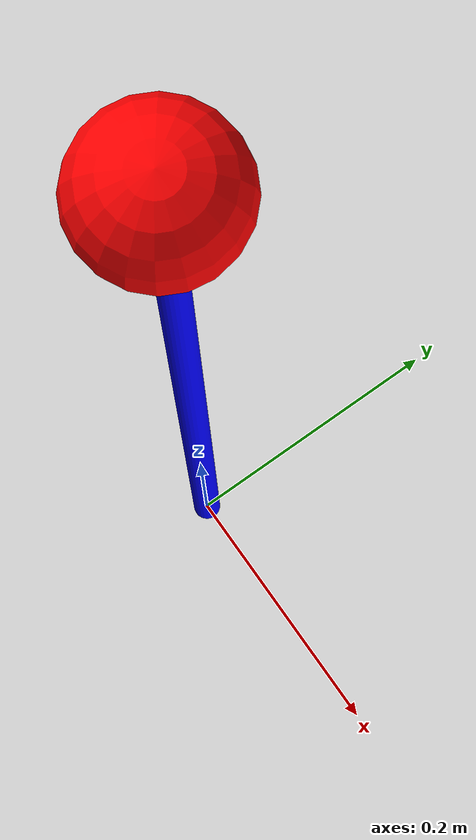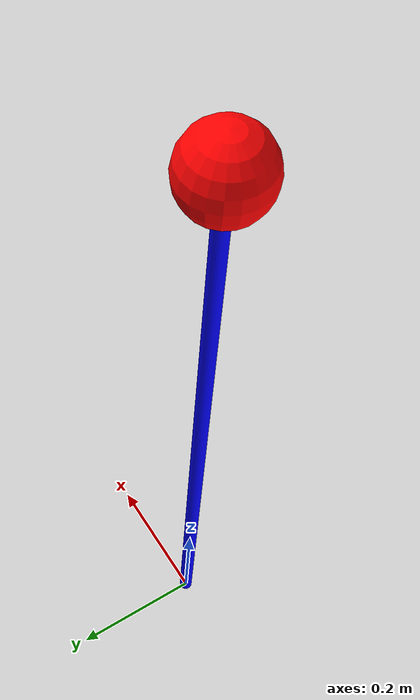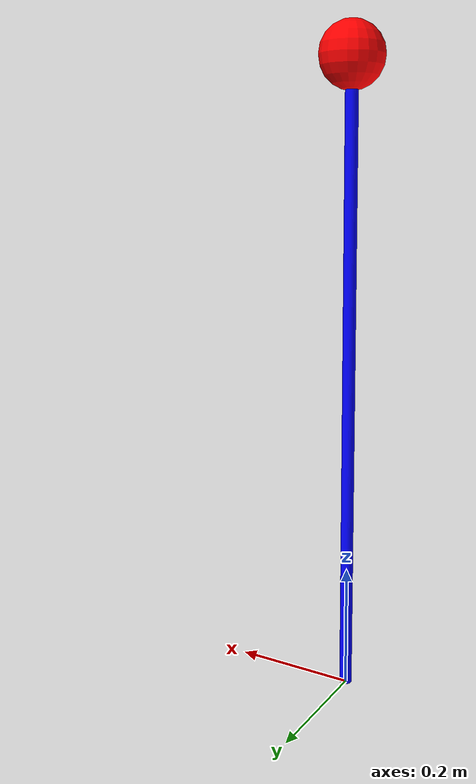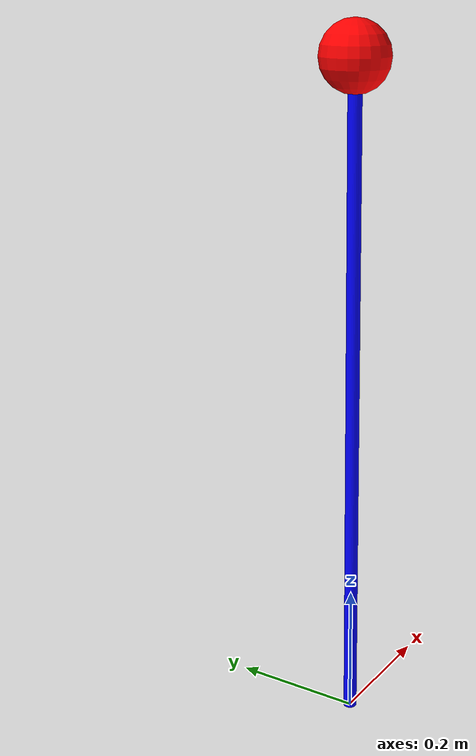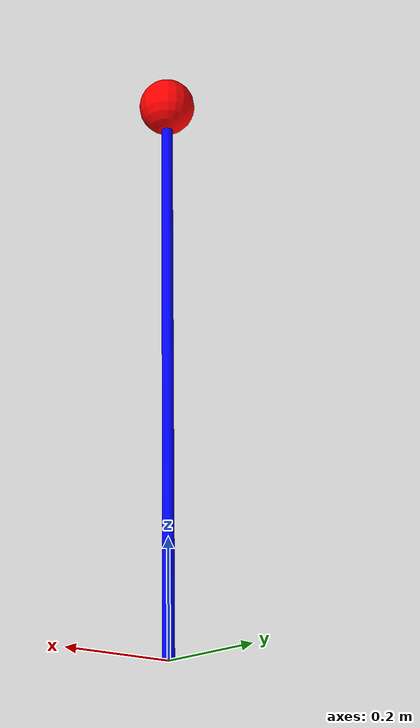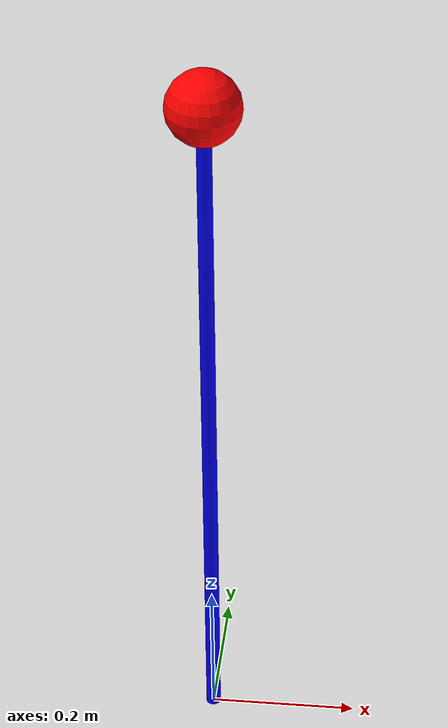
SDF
<?xml version="1.0" ?>
<sdf version="1.7">
  <model name="simple_pendulum">
    <link name="arm">
      <pose>0 0 0.5 0 0 0</pose> <inertial>
        <mass>0.1</mass> <inertia>
          <ixx>0.001</ixx>
          <iyy>0.001</iyy>
          <izz>0.001</izz>
          <ixy>0</ixy>
          <ixz>0</ixz>
          <iyz>0</iyz>
        </inertia>
      </inertial>
      <visual name="visual">
        <geometry>
          <cylinder>
            <radius>0.01</radius>
            <length>1</length>
          </cylinder>
        </geometry>
        <material>
          <ambient>0 0 1 1</ambient> <diffuse>0 0 1 1</diffuse>
          <specular>0 0 1 1</specular>
          <emissive>0 0 0 1</emissive>
        </material>
      </visual>
      <collision name="collision">
        <geometry>
          <cylinder>
            <radius>0.01</radius>
            <length>1</length>
          </cylinder>
        </geometry>
      </collision>
    </link>

    <link name="bob">
      <pose>0 0 1 0 0 0</pose> <inertial>
        <mass>0.5</mass> <inertia>
          <ixx>0.01</ixx>
          <iyy>0.01</iyy>
          <izz>0.01</izz>
          <ixy>0</ixy>
          <ixz>0</ixz>
          <iyz>0</iyz>
        </inertia>
      </inertial>
      <visual name="visual">
        <geometry>
          <sphere>
            <radius>0.05</radius>
          </sphere>
        </geometry>
        <material>
          <ambient>1 0 0 1</ambient> <diffuse>1 0 0 1</diffuse>
          <specular>1 0 0 1</specular>
          <emissive>0 0 0 1</emissive>
        </material>
      </visual>
      <collision name="collision">
        <geometry>
          <sphere>
            <radius>0.05</radius>
          </sphere>
        </geometry>
      </collision>
    </link>

    <joint name="arm_bob_joint" type="revolute">
      <parent>arm</parent>
      <child>bob</child>
      <axis>
        <xyz>0 1 0</xyz>
        <limit>
          <lower>-1e16</lower>
          <upper>1e16</upper>
        </limit>
      </axis>
      <pose>0 0 1 0 0 0</pose>
    </joint>
  </model>
</sdf>
